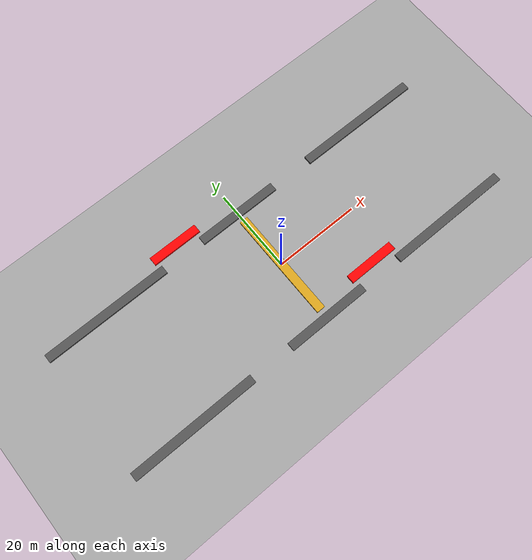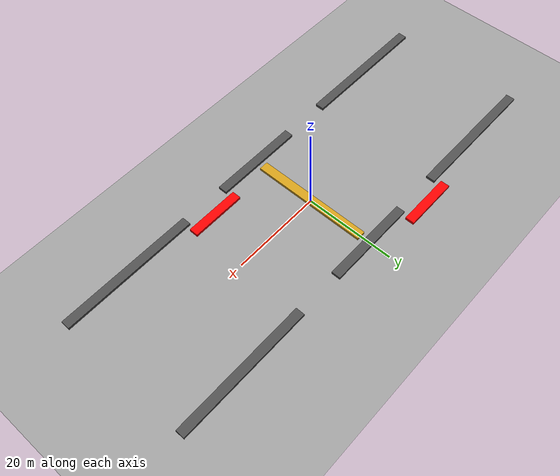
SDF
<sdf version="1.9">
 <world name="default">
  <physics type="ode">
   <max_step_size>0.01</max_step_size>
   <real_time_update_rate>60</real_time_update_rate>
  </physics>
  <model name="ground_plane">
   <static>true</static>
   <link name="link">
    <collision name="collision">
     <geometry><plane><normal>0 0 1</normal><size>100 100</size></plane></geometry>
     <surface><contact><collide_without_contact_bitmask>0x01</collide_without_contact_bitmask></contact></surface>
    </collision>
    <visual name="visual">
     <geometry><plane><normal>0 0 1</normal><size>100 100</size></plane></geometry>
     <material><ambient>0.6 0.6 0.6 1</ambient><diffuse>0.6 0.6 0.6 1</diffuse></material>
    </visual>
   </link>
  </model>
  <model name="L1_west">
   <pose>-35.0 15.0 0 0 0 0</pose>
   <link name="wall_link">
    <gravity>false</gravity>
    <visual name="visual">
     <geometry><box><size>30.0 2.0 1.0</size></box></geometry>
     <material><ambient>0.3 0.3 0.3 1</ambient></material>
    </visual>
   </link>
  </model>
  <model name="L1_center">
   <pose>0.0 15.0 0 0 0 0</pose>
   <link name="wall_link">
    <gravity>false</gravity>
    <visual name="visual">
     <geometry><box><size>20.0 2.0 1.0</size></box></geometry>
     <material><ambient>0.3 0.3 0.3 1</ambient></material>
    </visual>
   </link>
  </model>
  <model name="L1_east">
   <pose>35.0 15.0 0 0 0 0</pose>
   <link name="wall_link">
    <gravity>false</gravity>
    <visual name="visual">
     <geometry><box><size>30.0 2.0 1.0</size></box></geometry>
     <material><ambient>0.3 0.3 0.3 1</ambient></material>
    </visual>
   </link>
  </model>
  <model name="slider_top">
   <pose>-15.0 18.0 0 0 0 0</pose>
   <link name="moving_link">
    <gravity>false</gravity>
    <visual name="visual">
     <geometry><box><size>12.0 2.0 1.0</size></box></geometry>
     <material><ambient>1 0 0 1</ambient></material>
    </visual>
   </link>
   <motion>
    <link_name>moving_link</link_name>
    <direction>1 0 0</direction>
    <amplitude>30.0</amplitude>
    <speed>15.0</speed>
    <turnaround_threshold>0.5</turnaround_threshold>
   </motion>
  </model>
  <model name="central_divider">
   <link name="wall_link">
    <gravity>false</gravity>
    <visual name="visual">
     <geometry><box><size>2.0 26.0 1.0</size></box></geometry>
     <material><ambient>0.8 0.6 0.1 1</ambient></material>
    </visual>
   </link>
  </model>
  <model name="L2_west">
   <pose>-35.0 -15.0 0 0 0 0</pose>
   <link name="wall_link">
    <gravity>false</gravity>
    <visual name="visual">
     <geometry><box><size>30.0 2.0 1.0</size></box></geometry>
     <material><ambient>0.3 0.3 0.3 1</ambient></material>
    </visual>
   </link>
  </model>
  <model name="L2_center">
   <pose>0.0 -15.0 0 0 0 0</pose>
   <link name="wall_link">
    <gravity>false</gravity>
    <visual name="visual">
     <geometry><box><size>20.0 2.0 1.0</size></box></geometry>
     <material><ambient>0.3 0.3 0.3 1</ambient></material>
    </visual>
   </link>
  </model>
  <model name="L2_east">
   <pose>35.0 -15.0 0 0 0 0</pose>
   <link name="wall_link">
    <gravity>false</gravity>
    <visual name="visual">
     <geometry><box><size>30.0 2.0 1.0</size></box></geometry>
     <material><ambient>0.3 0.3 0.3 1</ambient></material>
    </visual>
   </link>
  </model>
  <model name="slider_bottom">
   <pose>15.0 -12.0 0 0 0 0</pose>
   <link name="moving_link">
    <gravity>false</gravity>
    <visual name="visual">
     <geometry><box><size>12.0 2.0 1.0</size></box></geometry>
     <material><ambient>1 0 0 1</ambient></material>
    </visual>
   </link>
   <motion>
    <link_name>moving_link</link_name>
    <direction>-1 0 0</direction>
    <amplitude>30.0</amplitude>
    <speed>15.0</speed>
    <turnaround_threshold>0.5</turnaround_threshold>
   </motion>
  </model>
 </world>
</sdf>
